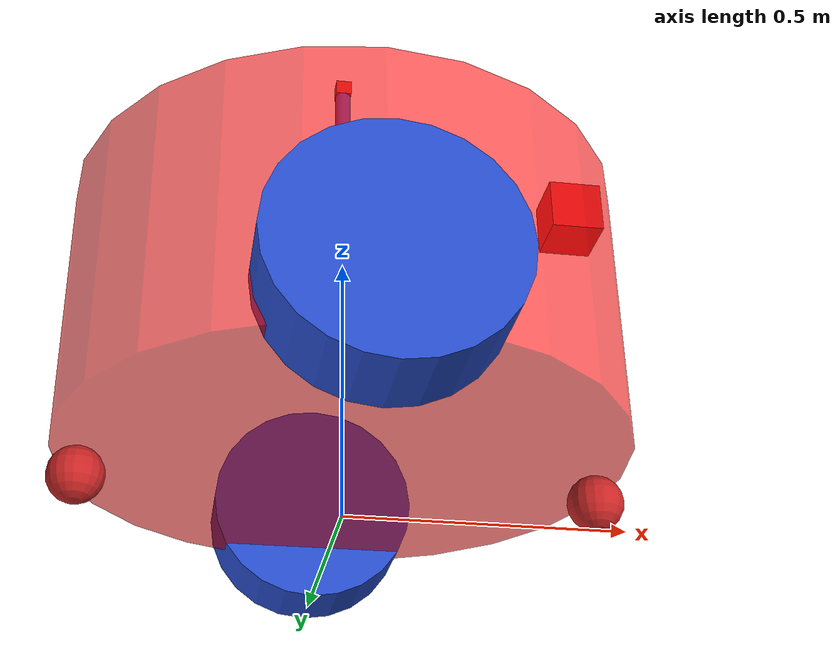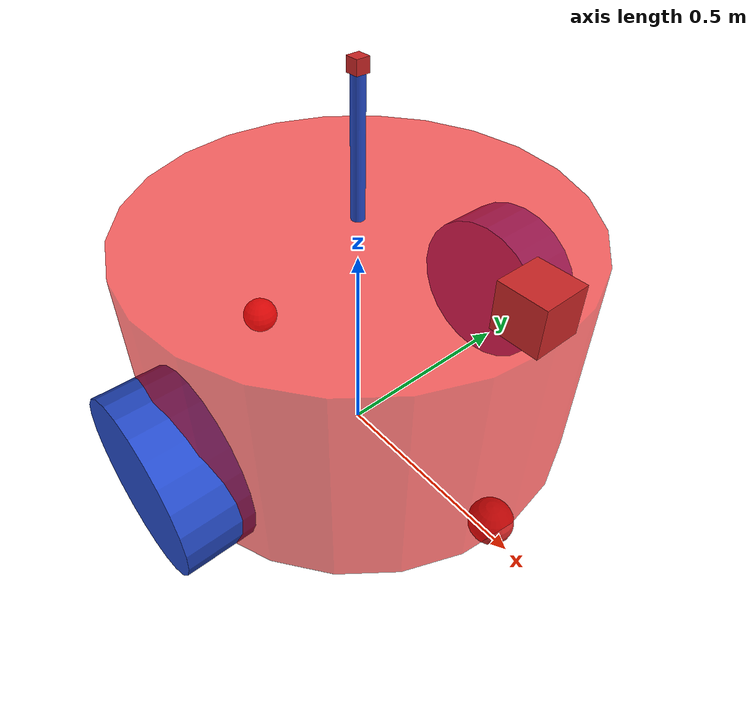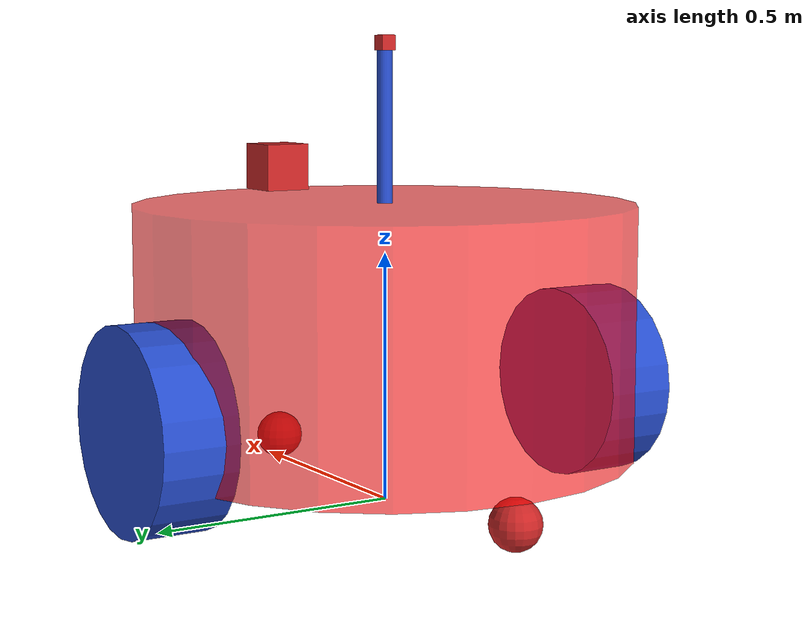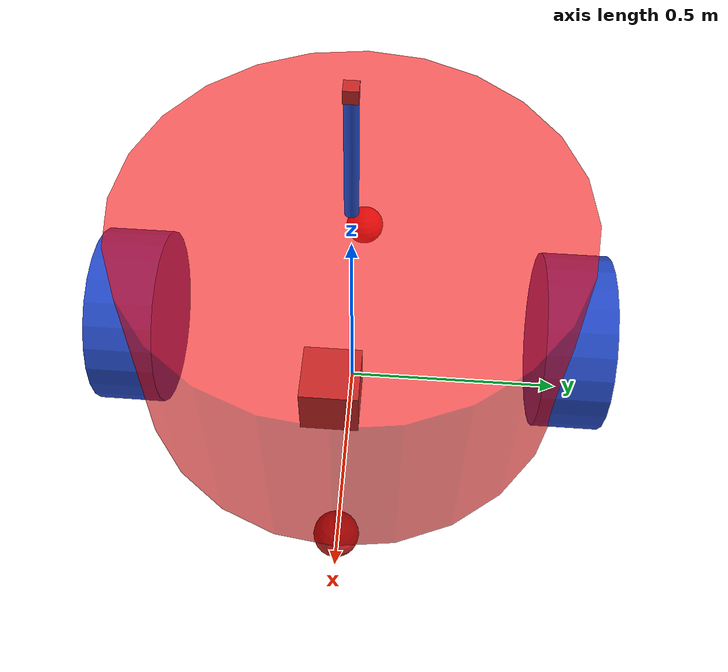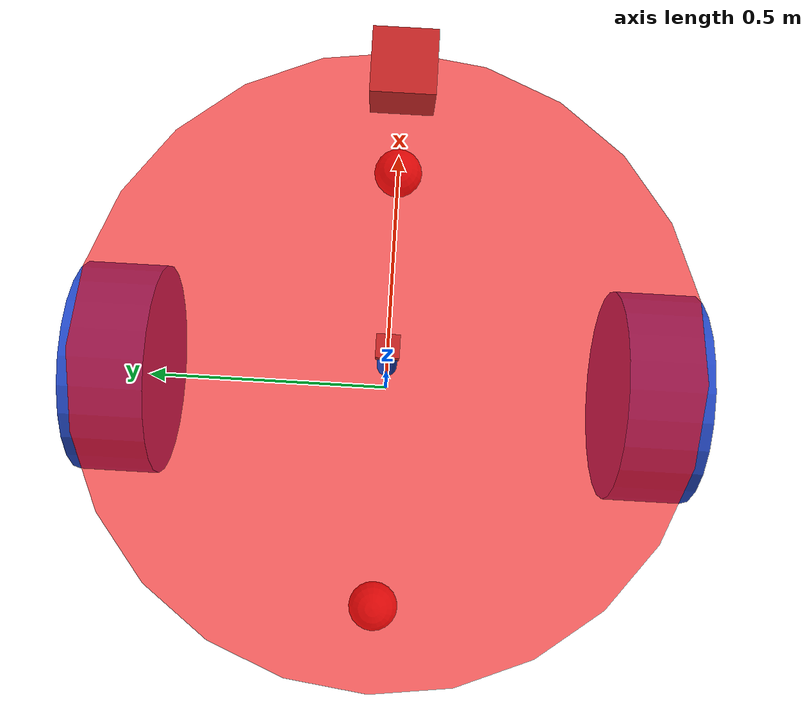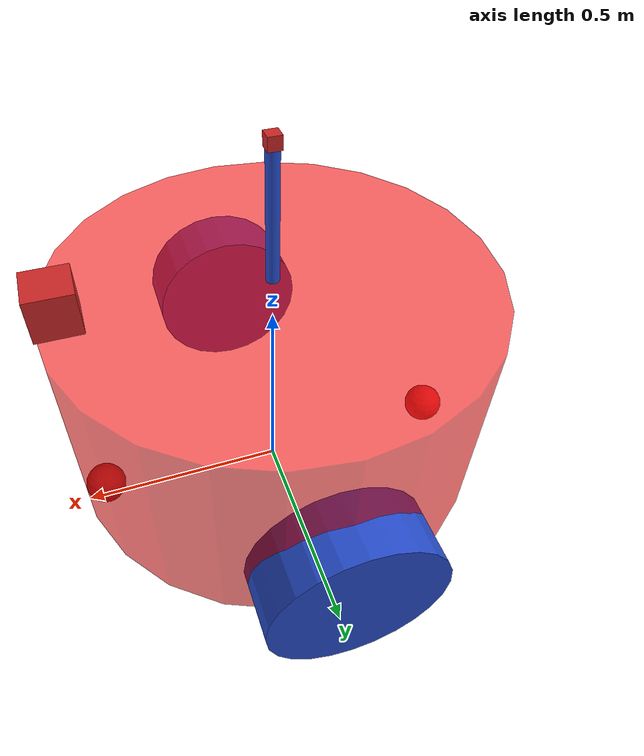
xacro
<?xml version="1.0"?>
<robot xmlns:xacro="http://www.ros.org/wiki/xacro" name="myrobot2">
    <xacro:include filename="$(find cha6Gazebo)/urdf/inertialMa.xacro"/>
    <xacro:include filename="$(find cha6Gazebo)/urdf/mybase2.xacro"/>
    <xacro:include filename="$(find cha6Gazebo)/urdf/camera.xacro"/>
    <xacro:include filename="$(find cha6Gazebo)/urdf/laser.xacro"/>
    <!-- simulate hardware(camera laser...) -->
    <xacro:include filename="$(find cha6Gazebo)/urdf/gazebo/move.xacro"/>
    <xacro:include filename="$(find cha6Gazebo)/urdf/gazebo/laserSim.xacro"/>
    <xacro:include filename="$(find cha6Gazebo)/urdf/gazebo/cameraSim.xacro"/>
    <xacro:include filename="$(find cha6Gazebo)/urdf/gazebo/kinectSim.xacro"/>

</robot>

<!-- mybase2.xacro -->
<robot xmlns:xacro="http://www.ros.org/wiki/xacro" name="robot_name">

    <xacro:property name="floor_base_distance" value="0.1"/>
    <xacro:property name="PI" value="3.1415926"/>

<!-- base link -->
    <xacro:property name="base_link_r" value="0.5"/>
    <xacro:property name="base_link_length" value="0.5"/>
    <xacro:property name="base_link_m" value="2"/>

    <link name="base_footprint">
        <visual>
            <geometry>
                <sphere radius="0.0001"/>
            </geometry>
        </visual>
    </link>
    <link name="base_link">
        <visual>
            <geometry>
                <cylinder radius="${base_link_r}" length="${base_link_length}"/>
            </geometry>
            <origin xyz="0.0 0.0 0.0" rpy="0.0 0.0 0.0"/>
            <material name="red">
                <color rgba="1 0 0 0.6"/>
            </material>
        </visual>
        <collision>
             <geometry>
                <cylinder radius="${base_link_r}" length="${base_link_length}"/>
            </geometry>
            <origin xyz="0.0 0.0 0.0" rpy="0.0 0.0 0.0"/>
        </collision>

        <!-- set inertial matrix -->
        <xacro:cylinder_inertial_matrix m="${base_link_m}" r="${base_link_r}" h="${base_link_length}"/>
    </link>
    <joint name="base_link2base_footprint" type="fixed">
        <parent link="base_footprint"/>
        <child link="base_link"/>
        <origin xyz="0.0 0.0 ${base_link_length/2+floor_base_distance}" rpy="0.0 0.0 0.0"/>
    </joint>
    <gazebo reference="base_link">
        <material>Gazebo/Yellow</material>
    </gazebo>

<!-- universal wheel macro -->
    <xacro:property name="uni_wheel_r" value="0.05"/>
    <xacro:property name="uni_wheel_m" value="0.01"/>
    <!-- flage -1:right wheel 1:left wheel -->
    <xacro:macro name="add_uni_wheel" params="name flage">
        <link name="${name}_uni_wheel">
            <visual>
                <geometry>
                    <sphere radius="${uni_wheel_r}"/>
                </geometry>
                <origin xyz="0.0 0.0 0.0" rpy="0.0 0.0 0.0"/>
            </visual>
            <collision>
                <geometry>
                    <sphere radius="${uni_wheel_r}"/>
                </geometry>
                <origin xyz="0.0 0.0 0.0" rpy="0.0 0.0 0.0"/>
            </collision>
            <!-- set inertial matrix -->
            <xacro:sphere_inertial_matrix m="${uni_wheel_m}" r="${uni_wheel_r}"/>
        </link>
        <joint name="${name}_uni_wheel2base_link" type="continuous">
            <parent link="base_link"/>
            <child link="${name}_uni_wheel"/>
            <origin xyz="${(base_link_r-uni_wheel_r)*flage} 0.0 ${-(uni_wheel_r+base_link_length/2)}" rpy="0.0 0.0 0.0"/>
            <!-- can rotate about the x,y,z axis -->
            <axis xyz="1 1 1"/>
        </joint>
        <gazebo reference="${name}_uni_wheel">
            <material>Gazebo/Red</material>
        </gazebo>
    </xacro:macro>

    <!-- driving wheel macro -->
     <xacro:property name="dri_wheel_r" value="0.2"/>
     <xacro:property name="dri_wheel_length" value="0.15"/>
     <xacro:property name="dri_wheel_m" value="0.2"/>
    <!-- flage -1:right wheel 1:left wheel -->
    <xacro:macro name="add_dri_wheel" params="name flage">
        <link name="${name}_dri_wheel">
            <visual>
                <geometry>
                    <cylinder radius="${dri_wheel_r}" length="${dri_wheel_length}"/>
                </geometry>
                <origin xyz="0.0 0.0 0.0" rpy="${PI/2} 0.0 0.0"/>
            </visual>
            <collision>
                 <geometry>
                    <cylinder radius="${dri_wheel_r}" length="${dri_wheel_length}"/>
                </geometry>
                <origin xyz="0.0 0.0 0.0" rpy="${PI/2} 0.0 0.0"/>
            </collision>
            <!-- set inertial matrix -->
            <xacro:cylinder_inertial_matrix m="${dri_wheel_m}" h="${dri_wheel_length}" r="${dri_wheel_r}"/>
        </link>
        <joint name="${name}_dri_wheel2base_link" type="continuous">
            <parent link="base_link"/>
            <child link="${name}_dri_wheel"/>
            <origin xyz="0 ${base_link_r*flage} ${dri_wheel_r-(floor_base_distance+base_link_length/2)}" rpy="0.0 0.0 0.0"/>
            <!-- can rotate about the y axis -->
            <axis xyz="0 1 0"/>
        </joint>
        <gazebo reference="${name}_dri_wheel">
            <material>Gazebo/Blue</material>
        </gazebo>
    </xacro:macro>

    <!-- use universal wheel macro -->
    <xacro:add_uni_wheel name="left" flage="1"/>
    <xacro:add_uni_wheel name="right" flage="-1"/>
    <!-- use driving wheel macro -->
    <xacro:add_dri_wheel name="left" flage="1"/>
    <xacro:add_dri_wheel name="right" flage="-1"/>
</robot>

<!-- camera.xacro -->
<robot xmlns:xacro="http://www.ros.org/wiki/xacro" name="laser">
<!-- camera macro-->
    <xacro:property name="camera_x_length" value="0.1"/>
    <xacro:property name="camera_y_length" value="0.1"/>
    <xacro:property name="camera_z_length" value="0.1"/>
    <xacro:property name="camera_m" value="0.01"/>

    <xacro:macro name="add_camera" params="">
        <link name="camera">
            <visual>
                <geometry>
                    <box size="${camera_x_length} ${camera_y_length} ${camera_z_length}"/>
                </geometry>
                <origin xyz="0.0 0.0 0.0" rpy="0.0 0.0 0.0"/>
            </visual>
            <collision>
                <geometry>
                    <box size="${camera_x_length} ${camera_y_length} ${camera_z_length}"/>
                </geometry>
                <origin xyz="0.0 0.0 0.0" rpy="0.0 0.0 0.0"/>
            </collision>
            <xacro:Box_inertial_matrix m="${camera_m}" l="${camera_x_length}" w="${camera_y_length}" h="${camera_z_length}" />
        </link>

        <joint name="camera2base_link" type="continuous">
            <parent link="base_link"/>
            <child link="camera"/>
            <origin xyz="${base_link_r-camera_x_length/2} 0.0 ${base_link_length/2+camera_x_length/2}" rpy="0.0 0.0 0.0"/>
            <!-- Rotate about the z axis -->
            <axis xyz="0.0 0.0 1"/>
        </joint>
        <gazebo reference="camera">
            <material>Gazebo/Red</material>
        </gazebo>

    </xacro:macro>
    <!-- use camera macro -->
    <xacro:add_camera/>
</robot>

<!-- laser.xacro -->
<robot xmlns:xacro="http://www.ros.org/wiki/xacro" name="laser">
    <!-- support -->
    <xacro:property name="support_r" value="0.015"/>
    <xacro:property name="support_length" value="0.30"/>
    <xacro:property name="support_m" value="0.01"/>
    <xacro:macro name="add_support" params="">
        <link name="support">
            <visual>
                <geometry>
                    <cylinder radius="${support_r}" length="${support_length}"/>
                </geometry>
                <origin xyz="0.0 0.0 0.0" rpy="0 0.0 0.0"/>
            </visual>
            <collision>
                <geometry>
                    <cylinder radius="${support_r}" length="${support_length}"/>
                </geometry>
                <origin xyz="0.0 0.0 0.0" rpy="0 0.0 0.0"/>
            </collision>
            <!-- set inertial matrix -->
            <xacro:cylinder_inertial_matrix m="${support_m}" r="${support_r}" h="${support_length}"/>

        </link>
        <joint name="support2base_link" type="fixed">
            <parent link="base_link"/>
            <child link="support"/>
            <origin xyz="0 0 ${base_link_length/2+support_length/2}" rpy="0.0 0.0 0.0"/>
        </joint>
        <gazebo reference="support">
            <material>Gazebo/Blue</material>
        </gazebo>
    </xacro:macro>
    <!-- laser -->
    <xacro:property name="laser_length" value="0.03"/>
    <xacro:property name="laser_m" value="0.03"/>

    <xacro:macro name="add_laser" params="">
        <link name="laser">
            <visual>
                <geometry>
                    <box size="${laser_length} ${laser_length} ${laser_length}"/>
                </geometry>
                <origin xyz="0.0 0.0 0.0" rpy="0 0.0 0.0"/>
            </visual>
            <collision>
                <geometry>
                    <box size="${laser_length} ${laser_length} ${laser_length}"/>
                </geometry>
                <origin xyz="0.0 0.0 0.0" rpy="0 0.0 0.0"/>
            </collision>
            <!-- set inertial matrix -->
            <xacro:Box_inertial_matrix m="${laser_m}" l="${laser_length}" w="${laser_length}" h="${laser_length}" />
        </link>
        <joint name="laser2support" type="fixed">
            <parent link="support"/>
            <child link="laser"/>
            <origin xyz="0 0 ${support_length/2+laser_length/2}" rpy="0.0 0.0 0.0"/>
        </joint>
        <gazebo reference="laser">
            <material>Gazebo/Red</material>
        </gazebo>
    </xacro:macro>
    <!-- use macro -->
    <xacro:add_support/>
    <xacro:add_laser/>
</robot>
